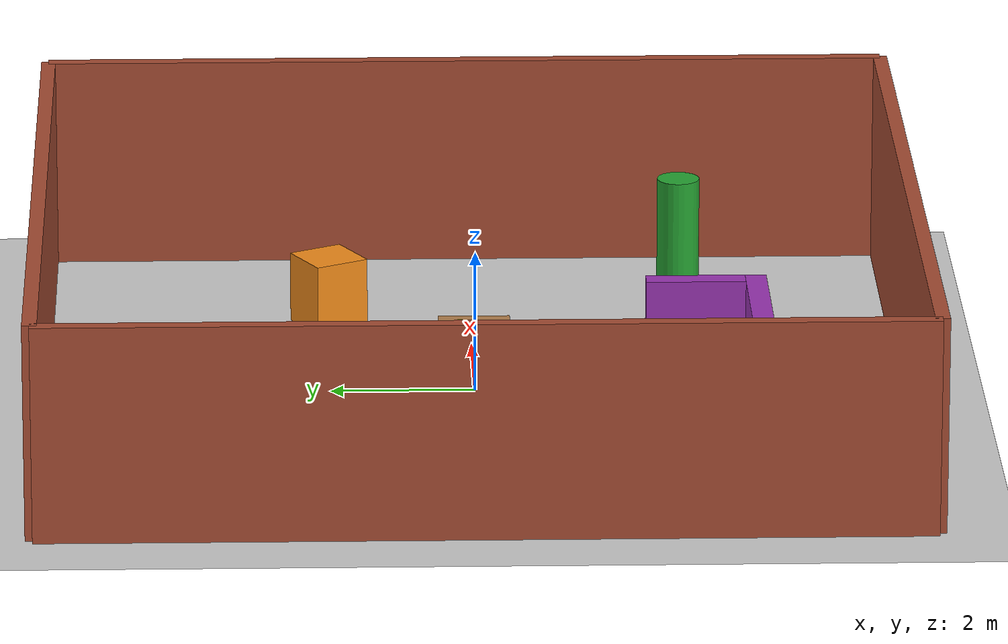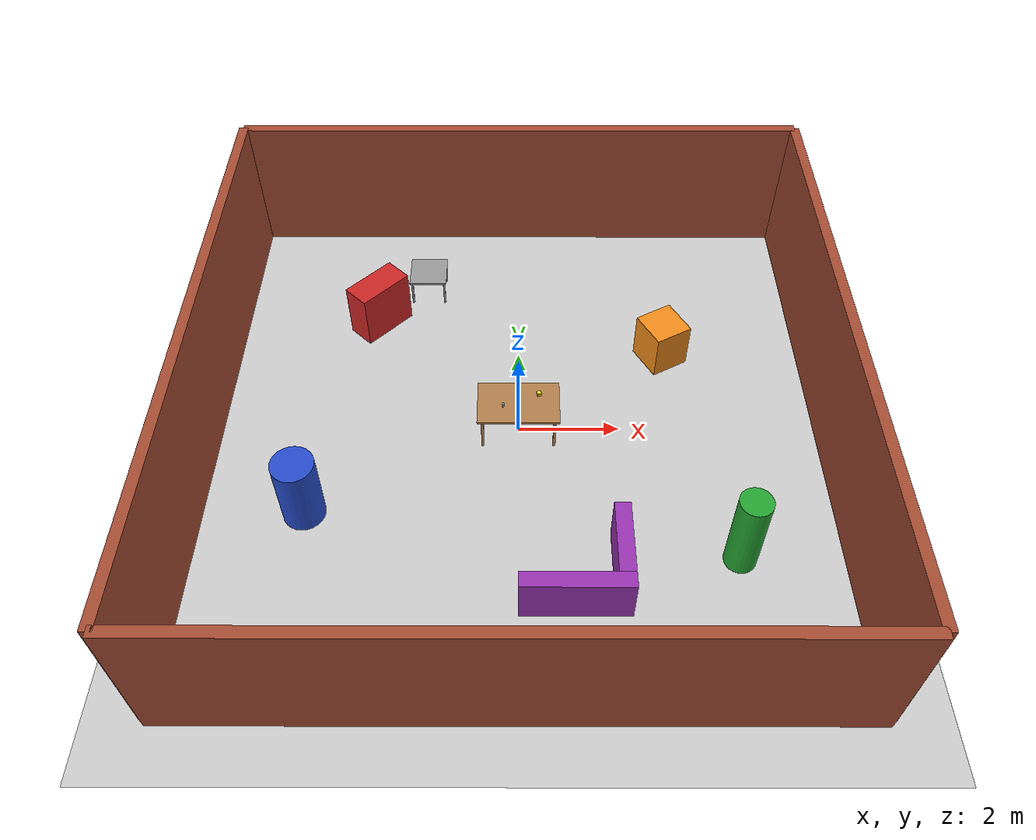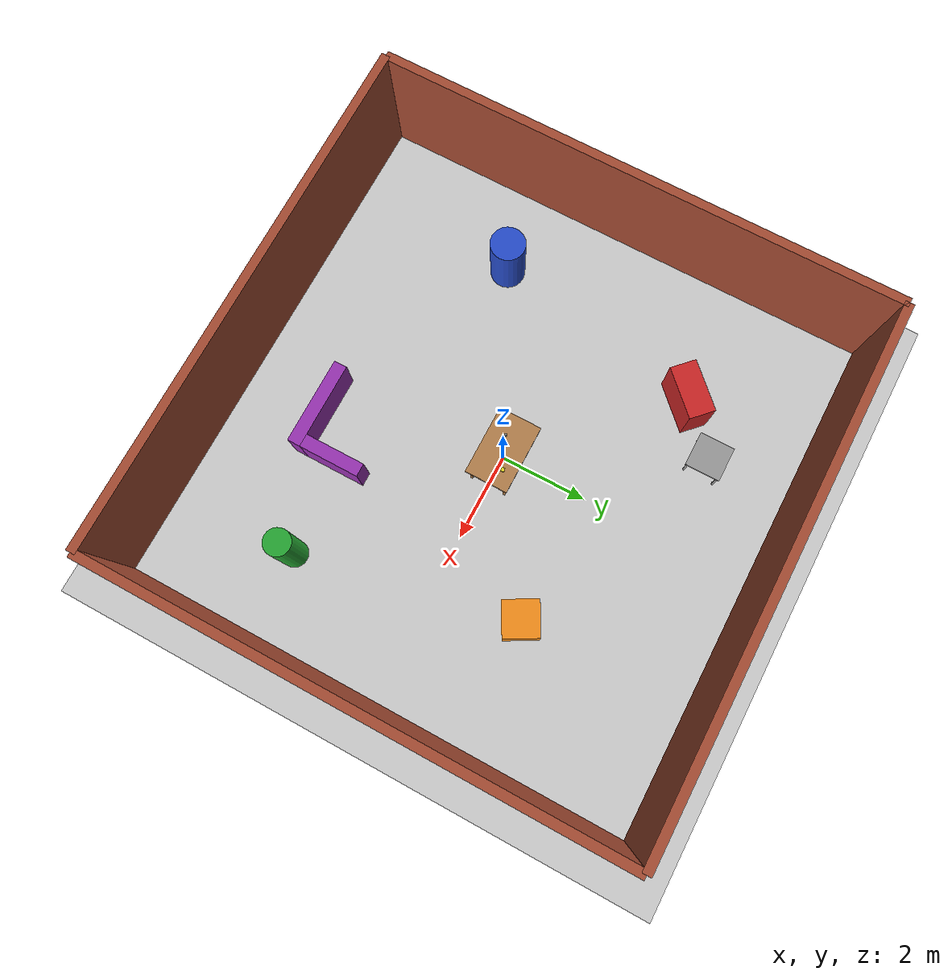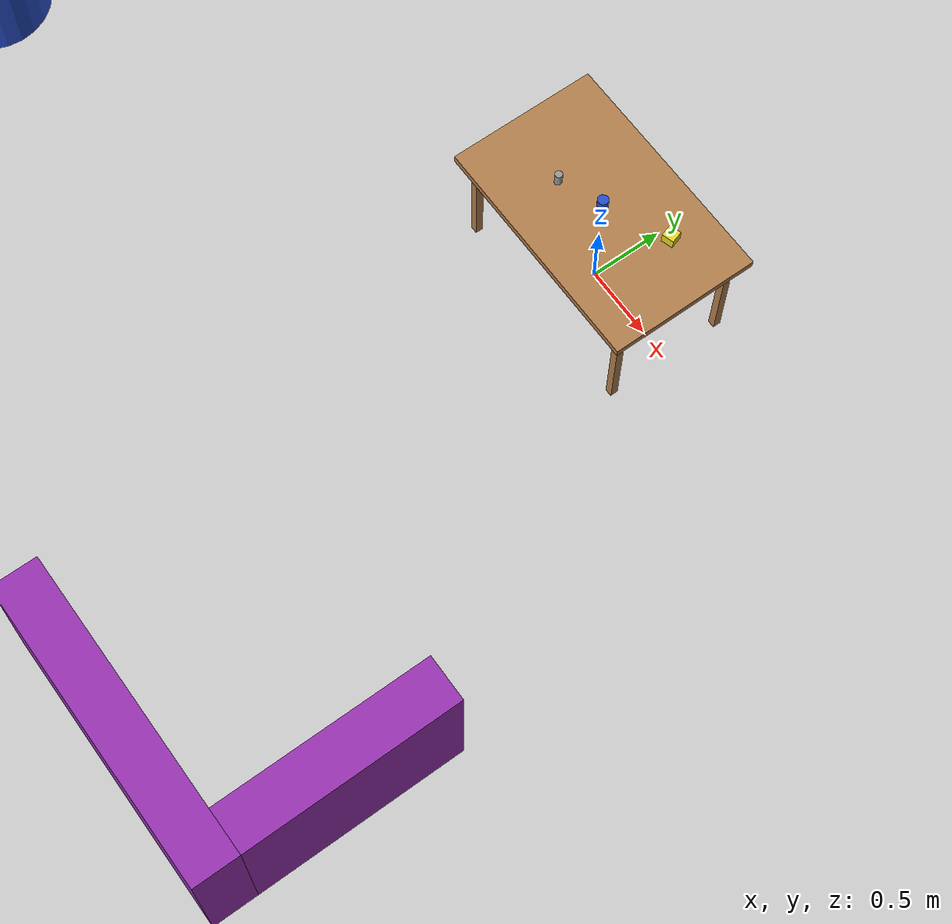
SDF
<?xml version="1.0" ?>
<sdf version="1.6">
  <world name="multi_world">

    <!-- Physics settings -->
    <physics type="ode">
      <max_step_size>0.001</max_step_size>
      <real_time_factor>1.0</real_time_factor>
      <real_time_update_rate>1000</real_time_update_rate>
    </physics>

    <!-- Lighting -->
    <light type="directional" name="sun">
      <cast_shadows>true</cast_shadows>
      <pose>0 0 10 0 0 0</pose>
      <diffuse>0.8 0.8 0.8 1</diffuse>
      <specular>0.2 0.2 0.2 1</specular>
      <attenuation>
        <range>1000</range>
        <constant>0.9</constant>
        <linear>0.01</linear>
        <quadratic>0.001</quadratic>
      </attenuation>
      <direction>-0.5 0.1 -0.9</direction>
    </light>

    <!-- Additional ambient lighting -->
    <light type="ambient" name="ambient_light">
      <color>0.4 0.4 0.4 1</color>
    </light>

    <!-- Ground plane -->
    <model name="ground_plane">
      <static>true</static>
      <link name="link">
        <collision name="collision">
          <geometry>
            <plane>
              <normal>0 0 1</normal>
              <size>20 20</size>
            </plane>
          </geometry>
          <surface>
            <friction>
              <ode>
                <mu>100</mu>
                <mu2>50</mu2>
              </ode>
            </friction>
          </surface>
        </collision>
        <visual name="visual">
          <cast_shadows>false</cast_shadows>
          <geometry>
            <plane>
              <normal>0 0 1</normal>
              <size>20 20</size>
            </plane>
          </geometry>
          <material>
            <script>
              <uri>file://media/materials/scripts/gazebo.material</uri>
              <name>Gazebo/Grey</name>
            </script>
          </material>
        </visual>
      </link>
    </model>

    <!-- Room walls -->
    <model name="wall_north">
      <static>true</static>
      <pose>0 6 1.5 0 0 0</pose>
      <link name="link">
        <collision name="collision">
          <geometry><box><size>12 0.2 3</size></box></geometry>
        </collision>
        <visual name="visual">
          <geometry><box><size>12 0.2 3</size></box></geometry>
          <material>
            <script>
              <uri>file://media/materials/scripts/gazebo.material</uri>
              <name>Gazebo/Bricks</name>
            </script>
          </material>
        </visual>
      </link>
    </model>

    <model name="wall_south">
      <static>true</static>
      <pose>0 -6 1.5 0 0 0</pose>
      <link name="link">
        <collision name="collision">
          <geometry><box><size>12 0.2 3</size></box></geometry>
        </collision>
        <visual name="visual">
          <geometry><box><size>12 0.2 3</size></box></geometry>
          <material>
            <script>
              <uri>file://media/materials/scripts/gazebo.material</uri>
              <name>Gazebo/Bricks</name>
            </script>
          </material>
        </visual>
      </link>
    </model>

    <model name="wall_east">
      <static>true</static>
      <pose>6 0 1.5 0 0 1.5707</pose>
      <link name="link">
        <collision name="collision">
          <geometry><box><size>12 0.2 3</size></box></geometry>
        </collision>
        <visual name="visual">
          <geometry><box><size>12 0.2 3</size></box></geometry>
          <material>
            <script>
              <uri>file://media/materials/scripts/gazebo.material</uri>
              <name>Gazebo/Bricks</name>
            </script>
          </material>
        </visual>
      </link>
    </model>

    <model name="wall_west">
      <static>true</static>
      <pose>-6 0 1.5 0 0 1.5707</pose>
      <link name="link">
        <collision name="collision">
          <geometry><box><size>12 0.2 3</size></box></geometry>
        </collision>
        <visual name="visual">
          <geometry><box><size>12 0.2 3</size></box></geometry>
          <material>
            <script>
              <uri>file://media/materials/scripts/gazebo.material</uri>
              <name>Gazebo/Bricks</name>
            </script>
          </material>
        </visual>
      </link>
    </model>

    <!-- Obstacles around the room -->
    <model name="obstacle_box_1">
      <static>true</static>
      <pose>3 2 0.5 0 0 0.5</pose>
      <link name="link">
        <collision name="collision">
          <geometry><box><size>0.8 0.8 1</size></box></geometry>
        </collision>
        <visual name="visual">
          <geometry><box><size>0.8 0.8 1</size></box></geometry>
          <material>
            <script>
              <uri>file://media/materials/scripts/gazebo.material</uri>
              <name>Gazebo/Orange</name>
            </script>
          </material>
        </visual>
      </link>
    </model>

    <model name="obstacle_box_2">
      <static>true</static>
      <pose>-3 3 0.6 0 0 0.8</pose>
      <link name="link">
        <collision name="collision">
          <geometry><box><size>1.2 0.6 1.2</size></box></geometry>
        </collision>
        <visual name="visual">
          <geometry><box><size>1.2 0.6 1.2</size></box></geometry>
          <material>
            <script>
              <uri>file://media/materials/scripts/gazebo.material</uri>
              <name>Gazebo/Red</name>
            </script>
          </material>
        </visual>
      </link>
    </model>

    <model name="obstacle_cylinder_1">
      <static>true</static>
      <pose>-4 -2 0.75 0 0 0</pose>
      <link name="link">
        <collision name="collision">
          <geometry><cylinder><radius>0.4</radius><length>1.5</length></cylinder></geometry>
        </collision>
        <visual name="visual">
          <geometry><cylinder><radius>0.4</radius><length>1.5</length></cylinder></geometry>
          <material>
            <script>
              <uri>file://media/materials/scripts/gazebo.material</uri>
              <name>Gazebo/Blue</name>
            </script>
          </material>
        </visual>
      </link>
    </model>

    <model name="obstacle_cylinder_2">
      <static>true</static>
      <pose>4 -3 0.9 0 0 0</pose>
      <link name="link">
        <collision name="collision">
          <geometry><cylinder><radius>0.3</radius><length>1.8</length></cylinder></geometry>
        </collision>
        <visual name="visual">
          <geometry><cylinder><radius>0.3</radius><length>1.8</length></cylinder></geometry>
          <material>
            <script>
              <uri>file://media/materials/scripts/gazebo.material</uri>
              <name>Gazebo/Green</name>
            </script>
          </material>
        </visual>
      </link>
    </model>

    <!-- L-shaped obstacle -->
    <model name="obstacle_L_shape">
      <static>true</static>
      <pose>1 -4 0.5 0 0 0</pose>
      <link name="link1">
        <pose>0 0 0 0 0 0</pose>
        <collision name="collision">
          <geometry><box><size>2 0.3 1</size></box></geometry>
        </collision>
        <visual name="visual">
          <geometry><box><size>2 0.3 1</size></box></geometry>
          <material>
            <script>
              <uri>file://media/materials/scripts/gazebo.material</uri>
              <name>Gazebo/Purple</name>
            </script>
          </material>
        </visual>
      </link>
      <link name="link2">
        <pose>0.85 0.85 0 0 0 0</pose>
        <collision name="collision">
          <geometry><box><size>0.3 1.4 1</size></box></geometry>
        </collision>
        <visual name="visual">
          <geometry><box><size>0.3 1.4 1</size></box></geometry>
          <material>
            <script>
              <uri>file://media/materials/scripts/gazebo.material</uri>
              <name>Gazebo/Purple</name>
            </script>
          </material>
        </visual>
      </link>
    </model>

    <!-- Main table for pick and place -->
    <model name="main_table">
      <static>true</static>
      <pose>0 0 0 0 0 0</pose>

      <!-- Table top -->
      <link name="table_top">
        <pose>0 0 0.8 0 0 0</pose>
        <collision name="collision">
          <geometry><box><size>1.6 1.0 0.05</size></box></geometry>
        </collision>
        <visual name="visual">
          <geometry><box><size>1.6 1.0 0.05</size></box></geometry>
          <material>
            <script>
              <uri>file://media/materials/scripts/gazebo.material</uri>
              <name>Gazebo/WoodPallet</name>
            </script>
          </material>
        </visual>
      </link>

      <!-- Table legs -->
      <link name="leg1">
        <pose>-0.7 0.4 0.4 0 0 0</pose>
        <collision name="collision">
          <geometry><box><size>0.05 0.05 0.8</size></box></geometry>
        </collision>
        <visual name="visual">
          <geometry><box><size>0.05 0.05 0.8</size></box></geometry>
          <material>
            <script>
              <uri>file://media/materials/scripts/gazebo.material</uri>
              <name>Gazebo/WoodPallet</name>
            </script>
          </material>
        </visual>
      </link>

      <link name="leg2">
        <pose>0.7 0.4 0.4 0 0 0</pose>
        <collision name="collision">
          <geometry><box><size>0.05 0.05 0.8</size></box></geometry>
        </collision>
        <visual name="visual">
          <geometry><box><size>0.05 0.05 0.8</size></box></geometry>
          <material>
            <script>
              <uri>file://media/materials/scripts/gazebo.material</uri>
              <name>Gazebo/WoodPallet</name>
            </script>
          </material>
        </visual>
      </link>

      <link name="leg3">
        <pose>-0.7 -0.4 0.4 0 0 0</pose>
        <collision name="collision">
          <geometry><box><size>0.05 0.05 0.8</size></box></geometry>
        </collision>
        <visual name="visual">
          <geometry><box><size>0.05 0.05 0.8</size></box></geometry>
          <material>
            <script>
              <uri>file://media/materials/scripts/gazebo.material</uri>
              <name>Gazebo/WoodPallet</name>
            </script>
          </material>
        </visual>
      </link>

      <link name="leg4">
        <pose>0.7 -0.4 0.4 0 0 0</pose>
        <collision name="collision">
          <geometry><box><size>0.05 0.05 0.8</size></box></geometry>
        </collision>
        <visual name="visual">
          <geometry><box><size>0.05 0.05 0.8</size></box></geometry>
          <material>
            <script>
              <uri>file://media/materials/scripts/gazebo.material</uri>
              <name>Gazebo/WoodPallet</name>
            </script>
          </material>
        </visual>
      </link>
    </model>

    <!-- Glass on the table for pick and place -->
    <model name="pickup_glass">
      <pose>0 0 0.87 0 0 0</pose>
      <link name="link">
        <collision name="collision">
          <geometry><cylinder><radius>0.035</radius><length>0.12</length></cylinder></geometry>
        </collision>
        <visual name="visual">
          <geometry><cylinder><radius>0.035</radius><length>0.12</length></cylinder></geometry>
          <material>
            <script>
              <uri>file://media/materials/scripts/gazebo.material</uri>
              <name>Gazebo/Blue</name>
            </script>
          </material>
        </visual>
        <inertial>
          <mass>0.15</mass>
          <inertia>
            <ixx>0.0002</ixx>
            <ixy>0</ixy>
            <ixz>0</ixz>
            <iyy>0.0002</iyy>
            <iyz>0</iyz>
            <izz>0.0001</izz>
          </inertia>
        </inertial>
      </link>
    </model>

    <!-- Additional objects on table -->
    <model name="small_box">
      <pose>0.4 0.2 0.855 0 0 0.3</pose>
      <link name="link">
        <collision name="collision">
          <geometry><box><size>0.08 0.08 0.08</size></box></geometry>
        </collision>
        <visual name="visual">
          <geometry><box><size>0.08 0.08 0.08</size></box></geometry>
          <material>
            <script>
              <uri>file://media/materials/scripts/gazebo.material</uri>
              <name>Gazebo/Yellow</name>
            </script>
          </material>
        </visual>
        <inertial>
          <mass>0.1</mass>
          <inertia>
            <ixx>0.0001</ixx>
            <ixy>0</ixy>
            <ixz>0</ixz>
            <iyy>0.0001</iyy>
            <iyz>0</iyz>
            <izz>0.0001</izz>
          </inertia>
        </inertial>
      </link>
    </model>

    <model name="small_cylinder">
      <pose>-0.3 -0.1 0.86 0 0 0</pose>
      <link name="link">
        <collision name="collision">
          <geometry><cylinder><radius>0.025</radius><length>0.1</length></cylinder></geometry>
        </collision>
        <visual name="visual">
          <geometry><cylinder><radius>0.025</radius><length>0.1</length></cylinder></geometry>
          <material>
            <script>
              <uri>file://media/materials/scripts/gazebo.material</uri>
              <name>Gazebo/Grey</name>
            </script>
          </material>
        </visual>
        <inertial>
          <mass>0.05</mass>
          <inertia>
            <ixx>0.00005</ixx>
            <ixy>0</ixy>
            <ixz>0</ixz>
            <iyy>0.00005</iyy>
            <iyz>0</iyz>
            <izz>0.00003</izz>
          </inertia>
        </inertial>
      </link>
    </model>

    <!-- Side table -->
    <model name="side_table">
      <static>true</static>
      <pose>-2 4 0 0 0 0</pose>

      <link name="table_top">
        <pose>0 0 0.6 0 0 0</pose>
        <collision name="collision">
          <geometry><box><size>0.8 0.8 0.04</size></box></geometry>
        </collision>
        <visual name="visual">
          <geometry><box><size>0.8 0.8 0.04</size></box></geometry>
          <material>
            <script>
              <uri>file://media/materials/scripts/gazebo.material</uri>
              <name>Gazebo/Grey</name>
            </script>
          </material>
        </visual>
      </link>

      <link name="leg1">
        <pose>-0.35 0.35 0.3 0 0 0</pose>
        <collision name="collision">
          <geometry><box><size>0.04 0.04 0.6</size></box></geometry>
        </collision>
        <visual name="visual">
          <geometry><box><size>0.04 0.04 0.6</size></box></geometry>
          <material>
            <script>
              <uri>file://media/materials/scripts/gazebo.material</uri>
              <name>Gazebo/Grey</name>
            </script>
          </material>
        </visual>
      </link>

      <link name="leg2">
        <pose>0.35 0.35 0.3 0 0 0</pose>
        <collision name="collision">
          <geometry><box><size>0.04 0.04 0.6</size></box></geometry>
        </collision>
        <visual name="visual">
          <geometry><box><size>0.04 0.04 0.6</size></box></geometry>
          <material>
            <script>
              <uri>file://media/materials/scripts/gazebo.material</uri>
              <name>Gazebo/Grey</name>
            </script>
          </material>
        </visual>
      </link>

      <link name="leg3">
        <pose>-0.35 -0.35 0.3 0 0 0</pose>
        <collision name="collision">
          <geometry><box><size>0.04 0.04 0.6</size></box></geometry>
        </collision>
        <visual name="visual">
          <geometry><box><size>0.04 0.04 0.6</size></box></geometry>
          <material>
            <script>
              <uri>file://media/materials/scripts/gazebo.material</uri>
              <name>Gazebo/Grey</name>
            </script>
          </material>
        </visual>
      </link>

      <link name="leg4">
        <pose>0.35 -0.35 0.3 0 0 0</pose>
        <collision name="collision">
          <geometry><box><size>0.04 0.04 0.6</size></box></geometry>
        </collision>
        <visual name="visual">
          <geometry><box><size>0.04 0.04 0.6</size></box></geometry>
          <material>
            <script>
              <uri>file://media/materials/scripts/gazebo.material</uri>
              <name>Gazebo/Grey</name>
            </script>
          </material>
        </visual>
      </link>
    </model>

  </world>
</sdf>
